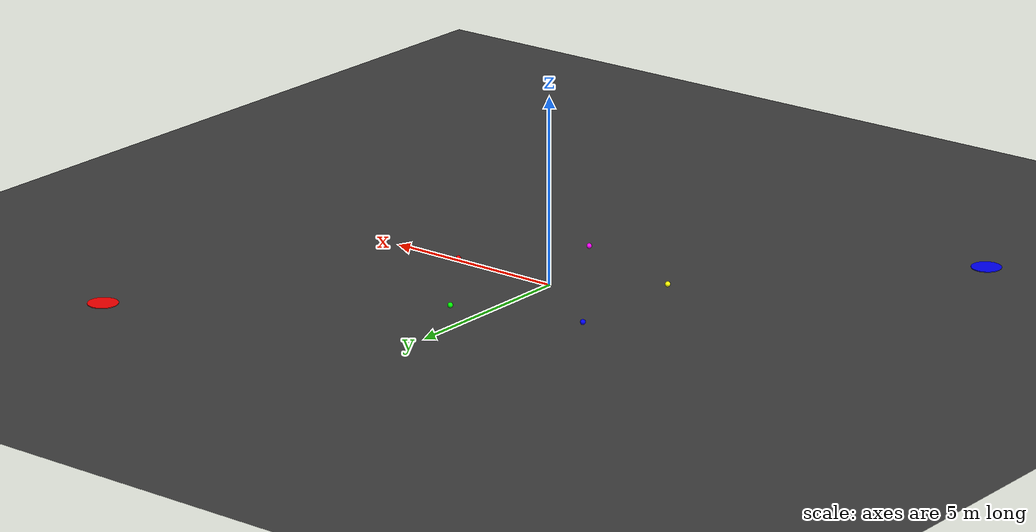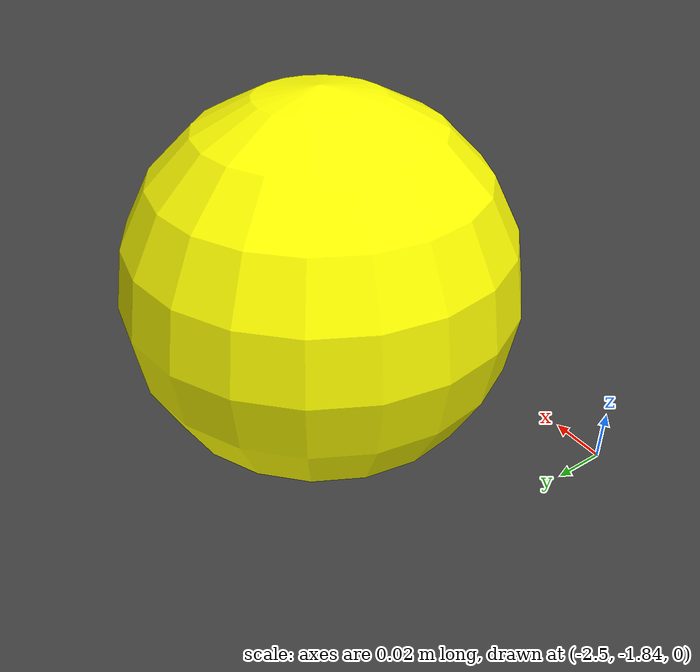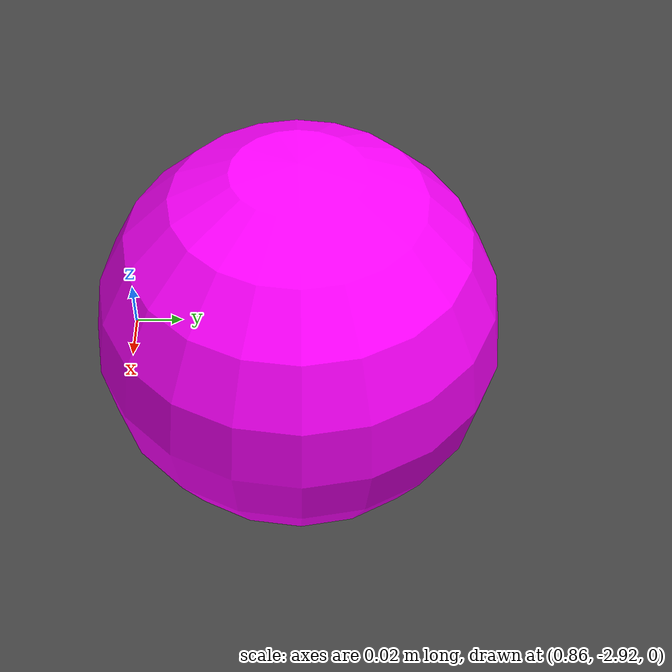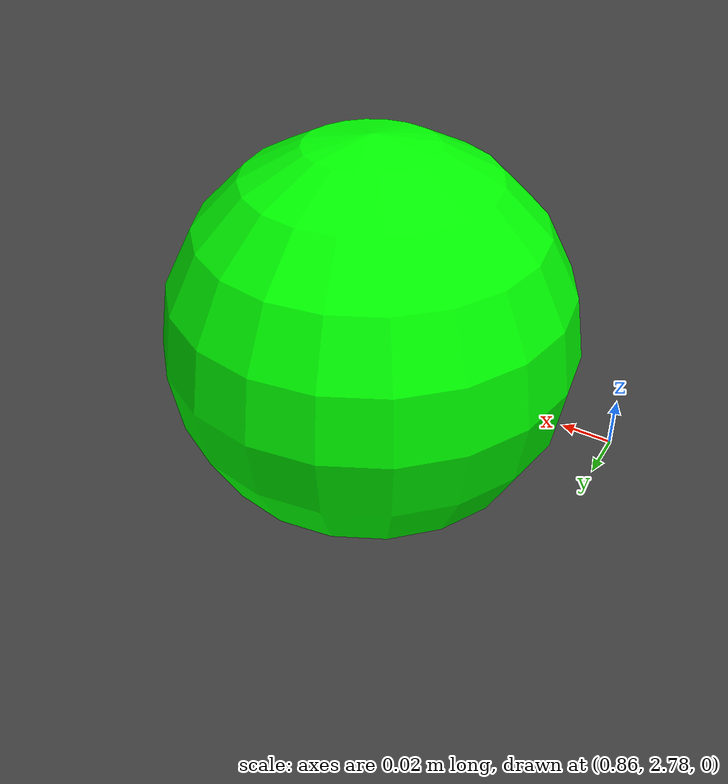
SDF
<sdf version="1.10">
  <world name="dispersed_cube_region">

    <!-- ================= SISTEMAS ================= -->
    <physics name="1ms" type="ignored">
      <max_step_size>0.001</max_step_size>
      <real_time_factor>1</real_time_factor>
      <real_time_update_rate>1000</real_time_update_rate>
    </physics>

    <plugin name="gz::sim::systems::Physics" filename="gz-sim-physics-system"/>
    <plugin name="gz::sim::systems::UserCommands" filename="gz-sim-user-commands-system"/>
    <plugin name="gz::sim::systems::SceneBroadcaster" filename="gz-sim-scene-broadcaster-system"/>
    <plugin name="gz::sim::systems::Sensors" filename="gz-sim-sensors-system">
      <render_engine>ogre2</render_engine>
    </plugin>
    <plugin filename='gz-sim-contact-system' name='gz::sim::systems::Contact'/>
    <plugin filename="gz-sim-imu-system" name="gz::sim::systems::Imu"/>
    <plugin filename="gz-sim-magnetometer-system" name="gz::sim::systems::Magnetometer"/>

    <gravity>0 0 -9.8</gravity>

    <scene>
      <ambient>0.25 0.25 0.25 1</ambient>
      <background>0.08 0.08 0.08 1</background>
      <shadows>true</shadows>
    </scene>

    <!-- ================= SUELO ================= -->
    <model name="ground_plane">
      <static>true</static>
      <link name="link">
        <collision name="collision">
          <geometry>
            <plane>
              <normal>0 0 1</normal>
              <size>20 20</size>
            </plane>
          </geometry>
        </collision>
        <visual name="visual">
          <geometry>
            <plane>
              <normal>0 0 1</normal>
              <size>20 20</size>
            </plane>
          </geometry>
          <material>
            <ambient>0.25 0.25 0.25 1</ambient>
            <diffuse>0.25 0.25 0.25 1</diffuse>
          </material>
        </visual>
      </link>
    </model>

    <!-- ================= MARCADORES ================= -->
    <model name="start_marker">
      <static>true</static>
      <pose>-8 -8 0.01 0 0 0</pose>
      <link name="l">
        <visual name="v">
          <geometry>
            <cylinder>
              <radius>0.4</radius>
              <length>0.02</length>
            </cylinder>
          </geometry>
          <material>
            <ambient>0 0 1 1</ambient>
            <diffuse>0 0 1 1</diffuse>
          </material>
        </visual>
      </link>
    </model>

    <model name="goal_marker">
      <static>true</static>
      <pose>8 8 0.01 0 0 0</pose>
      <link name="l">
        <visual name="v">
          <geometry>
            <cylinder>
              <radius>0.4</radius>
              <length>0.02</length>
            </cylinder>
          </geometry>
          <material>
            <ambient>1 0 0 1</ambient>
            <diffuse>1 0 0 1</diffuse>
          </material>
        </visual>
      </link>
    </model>

    <!-- ================= ESFERAS EN PENTÁGONO ================= -->
    <!-- Radio esfera: 0.07 m -->

    <model name="sphere_01">
      <static>true</static>
      <pose>3 0 0.07 0 0 0</pose>
      <link name="l">
        <collision name="c">
          <geometry><sphere><radius>0.07</radius></sphere></geometry>
        </collision>
        <visual name="v">
          <geometry><sphere><radius>0.07</radius></sphere></geometry>
          <material><ambient>1 0 0 1</ambient><diffuse>1 0 0 1</diffuse></material>
        </visual>
      </link>
    </model>

    <model name="sphere_02">
      <static>true</static>
      <pose>0.93 2.85 0.07 0 0 0</pose>
      <link name="l">
        <collision name="c">
          <geometry><sphere><radius>0.07</radius></sphere></geometry>
        </collision>
        <visual name="v">
          <geometry><sphere><radius>0.07</radius></sphere></geometry>
          <material><ambient>0 1 0 1</ambient><diffuse>0 1 0 1</diffuse></material>
        </visual>
      </link>
    </model>

    <model name="sphere_03">
      <static>true</static>
      <pose>-2.43 1.76 0.07 0 0 0</pose>
      <link name="l">
        <collision name="c">
          <geometry><sphere><radius>0.07</radius></sphere></geometry>
        </collision>
        <visual name="v">
          <geometry><sphere><radius>0.07</radius></sphere></geometry>
          <material><ambient>0 0 1 1</ambient><diffuse>0 0 1 1</diffuse></material>
        </visual>
      </link>
    </model>

    <model name="sphere_04">
      <static>true</static>
      <pose>-2.43 -1.76 0.07 0 0 0</pose>
      <link name="l">
        <collision name="c">
          <geometry><sphere><radius>0.07</radius></sphere></geometry>
        </collision>
        <visual name="v">
          <geometry><sphere><radius>0.07</radius></sphere></geometry>
          <material><ambient>1 1 0 1</ambient><diffuse>1 1 0 1</diffuse></material>
        </visual>
      </link>
    </model>

    <model name="sphere_05">
      <static>true</static>
      <pose>0.93 -2.85 0.07 0 0 0</pose>
      <link name="l">
        <collision name="c">
          <geometry><sphere><radius>0.07</radius></sphere></geometry>
        </collision>
        <visual name="v">
          <geometry><sphere><radius>0.07</radius></sphere></geometry>
          <material><ambient>1 0 1 1</ambient><diffuse>1 0 1 1</diffuse></material>
        </visual>
      </link>
    </model>

    <!-- ================= LUZ ================= -->
    <light name="sun" type="directional">
      <pose>0 0 12 0 0 0</pose>
      <direction>-0.5 0.1 -0.9</direction>
      <intensity>1</intensity>
    </light>

  </world>
</sdf>
